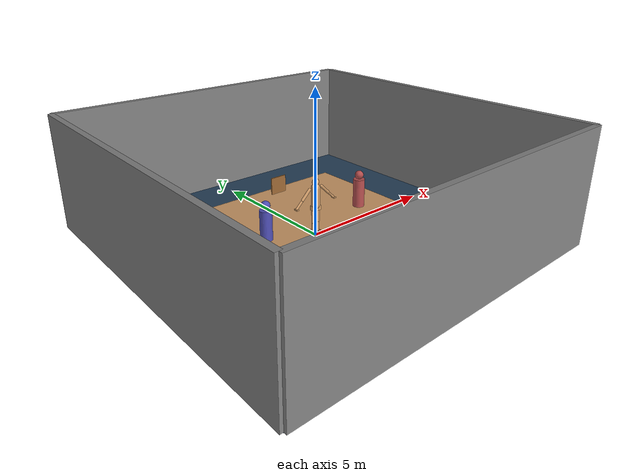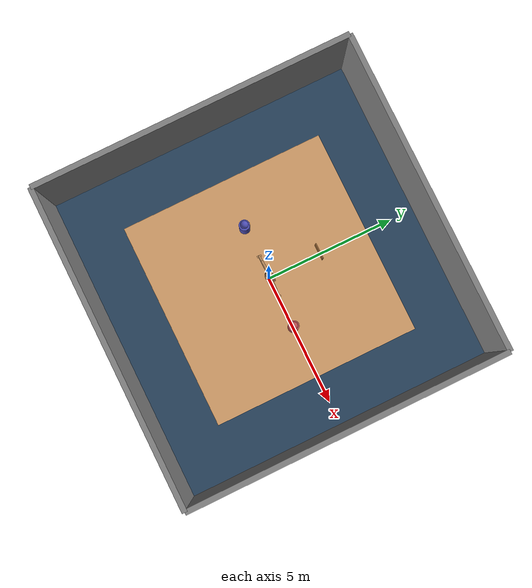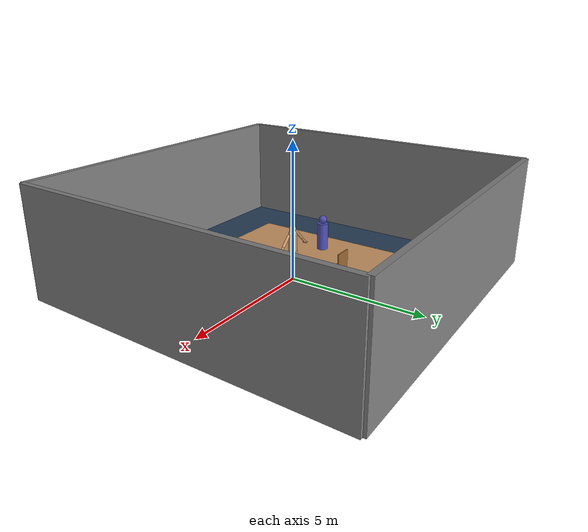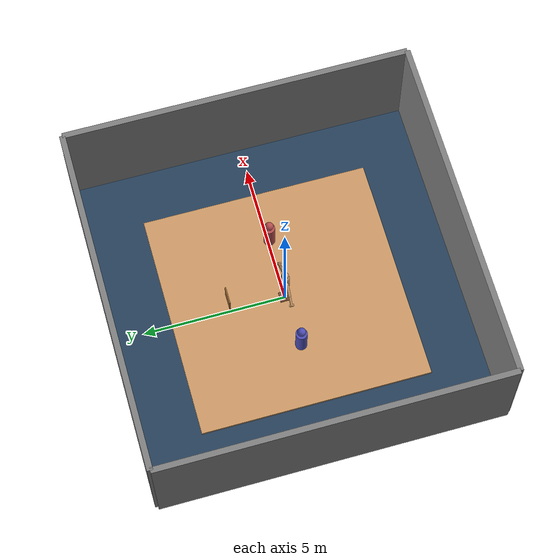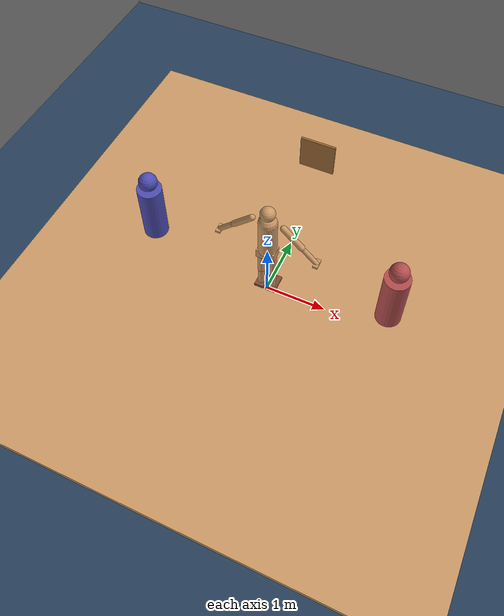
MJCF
<?xml version="1.0"?>
<mujoco model="humanoid_martial_arts">
    <compiler angle="degree" inertiafromgeom="true"/>
    <default>
        <joint armature="0.01" damping="0.5" limited="true"/>
        <geom contype="1" conaffinity="1" condim="3" friction="0.9 0.05 0.05" margin="0.01"/>
        <motor ctrlrange="-1 1" ctrllimited="true"/>
    </default>

    <option timestep="0.01667" gravity="0 0 -9.81" iterations="50" tolerance="1e-10" solver="Newton" jacobian="dense" cone="pyramidal"/>

    <visual>
        <quality shadowsize="2048"/>
        <headlight ambient="0.3 0.3 0.3" diffuse="0.5 0.5 0.5" specular="0.1 0.1 0.1"/>
    </visual>

    <size njmax="1000" nconmax="500" nstack="600000"/>

    <asset>
        <texture name="grid" type="2d" builtin="checker" rgb1="0.1 0.2 0.3" rgb2="0.2 0.3 0.4" width="512" height="512"/>
        <texture name="mat" type="2d" builtin="flat" rgb1="0.8 0.6 0.4" width="512" height="512"/>
        <material name="grid" texture="grid" texrepeat="10 10" specular="0.3" shininess="0.3" reflectance="0.1"/>
        <material name="mat" texture="mat" texrepeat="5 5" specular="0.3" shininess="0.3" reflectance="0.2"/>
    </asset>

    <worldbody>
        <!-- Dojo floor -->
        <geom name="floor" type="plane" size="6 6 0.1" material="grid" contype="1" conaffinity="1"/>
        <geom name="training_mat" type="box" pos="0 0 0.05" size="4 4 0.05" material="mat" contype="1" conaffinity="1"/>

        <!-- Walls for spatial reference -->
        <geom name="wall_north" type="box" pos="0 6 2" size="6 0.1 2" rgba="0.5 0.5 0.5 1" contype="1" conaffinity="1"/>
        <geom name="wall_south" type="box" pos="0 -6 2" size="6 0.1 2" rgba="0.5 0.5 0.5 1" contype="1" conaffinity="1"/>
        <geom name="wall_east" type="box" pos="6 0 2" size="0.1 6 2" rgba="0.5 0.5 0.5 1" contype="1" conaffinity="1"/>
        <geom name="wall_west" type="box" pos="-6 0 2" size="0.1 6 2" rgba="0.5 0.5 0.5 1" contype="1" conaffinity="1"/>

        <!-- Training dummies -->
        <body name="dummy1" pos="2 0 0">
            <joint name="dummy1_base" type="free"/>
            <geom name="dummy1_torso" type="cylinder" size="0.2 0.5" pos="0 0 1" rgba="0.7 0.3 0.3 1" mass="20"/>
            <geom name="dummy1_head" type="sphere" size="0.15" pos="0 0 1.65" rgba="0.7 0.3 0.3 1" mass="5"/>
        </body>

        <body name="dummy2" pos="-2 0 0">
            <joint name="dummy2_base" type="free"/>
            <geom name="dummy2_torso" type="cylinder" size="0.2 0.5" pos="0 0 1" rgba="0.3 0.3 0.7 1" mass="20"/>
            <geom name="dummy2_head" type="sphere" size="0.15" pos="0 0 1.65" rgba="0.3 0.3 0.7 1" mass="5"/>
        </body>

        <!-- Breaking boards for technique testing -->
        <body name="board1" pos="0 2 1.2">
            <joint name="board1_joint" type="hinge" axis="1 0 0" range="-45 45" damping="0.1"/>
            <geom name="board1_plank" type="box" size="0.3 0.02 0.3" rgba="0.6 0.4 0.2 1" mass="0.5"/>
        </body>

        <!-- Humanoid martial artist -->
        <body name="torso" pos="0 0 1.4">
            <joint name="torso_joint" type="free"/>
            <geom name="torso_geom" type="capsule" size="0.15 0.3" rgba="0.8 0.6 0.4 1" mass="10"/>

            <!-- Head -->
            <body name="head" pos="0 0 0.5">
                <joint name="neck_pitch" type="hinge" axis="0 1 0" range="-45 45"/>
                <joint name="neck_yaw" type="hinge" axis="0 0 1" range="-90 90"/>
                <geom name="head_geom" type="sphere" size="0.12" rgba="0.8 0.6 0.4 1" mass="3"/>
            </body>

            <!-- Right arm -->
            <body name="right_shoulder" pos="0.25 0 0.3">
                <joint name="right_shoulder_pitch" type="hinge" axis="0 1 0" range="-180 90"/>
                <joint name="right_shoulder_roll" type="hinge" axis="1 0 0" range="-90 180"/>
                <joint name="right_shoulder_yaw" type="hinge" axis="0 0 1" range="-90 90"/>
                <geom name="right_upper_arm" type="capsule" fromto="0 0 0 0.3 0 -0.3" size="0.05" rgba="0.8 0.6 0.4 1" mass="2"/>

                <body name="right_elbow" pos="0.3 0 -0.3">
                    <joint name="right_elbow_pitch" type="hinge" axis="0 1 0" range="0 150"/>
                    <geom name="right_forearm" type="capsule" fromto="0 0 0 0.25 0 -0.25" size="0.04" rgba="0.8 0.6 0.4 1" mass="1.5"/>

                    <body name="right_hand" pos="0.25 0 -0.25">
                        <joint name="right_wrist_pitch" type="hinge" axis="0 1 0" range="-90 90"/>
                        <joint name="right_wrist_roll" type="hinge" axis="1 0 0" range="-45 45"/>
                        <geom name="right_hand_geom" type="box" size="0.04 0.08 0.02" rgba="0.8 0.6 0.4 1" mass="0.5"/>
                        <site name="right_hand" pos="0 0 0" size="0.01"/>
                    </body>
                </body>
            </body>

            <!-- Left arm (mirror of right) -->
            <body name="left_shoulder" pos="-0.25 0 0.3">
                <joint name="left_shoulder_pitch" type="hinge" axis="0 1 0" range="-180 90"/>
                <joint name="left_shoulder_roll" type="hinge" axis="1 0 0" range="-180 90"/>
                <joint name="left_shoulder_yaw" type="hinge" axis="0 0 1" range="-90 90"/>
                <geom name="left_upper_arm" type="capsule" fromto="0 0 0 -0.3 0 -0.3" size="0.05" rgba="0.8 0.6 0.4 1" mass="2"/>

                <body name="left_elbow" pos="-0.3 0 -0.3">
                    <joint name="left_elbow_pitch" type="hinge" axis="0 1 0" range="0 150"/>
                    <geom name="left_forearm" type="capsule" fromto="0 0 0 -0.25 0 -0.25" size="0.04" rgba="0.8 0.6 0.4 1" mass="1.5"/>

                    <body name="left_hand" pos="-0.25 0 -0.25">
                        <joint name="left_wrist_pitch" type="hinge" axis="0 1 0" range="-90 90"/>
                        <joint name="left_wrist_roll" type="hinge" axis="1 0 0" range="-45 45"/>
                        <geom name="left_hand_geom" type="box" size="0.04 0.08 0.02" rgba="0.8 0.6 0.4 1" mass="0.5"/>
                        <site name="left_hand" pos="0 0 0" size="0.01"/>
                    </body>
                </body>
            </body>

            <!-- Pelvis and legs -->
            <body name="pelvis" pos="0 0 -0.4">
                <joint name="waist_pitch" type="hinge" axis="0 1 0" range="-45 45"/>
                <joint name="waist_yaw" type="hinge" axis="0 0 1" range="-90 90"/>
                <geom name="pelvis_geom" type="box" size="0.15 0.1 0.08" rgba="0.8 0.6 0.4 1" mass="5"/>

                <!-- Right leg -->
                <body name="right_hip" pos="0.1 0 -0.1">
                    <joint name="right_hip_pitch" type="hinge" axis="0 1 0" range="-120 45"/>
                    <joint name="right_hip_roll" type="hinge" axis="1 0 0" range="-45 45"/>
                    <joint name="right_hip_yaw" type="hinge" axis="0 0 1" range="-45 45"/>
                    <geom name="right_thigh" type="capsule" fromto="0 0 0 0 0 -0.4" size="0.06" rgba="0.8 0.6 0.4 1" mass="4"/>

                    <body name="right_knee" pos="0 0 -0.4">
                        <joint name="right_knee_pitch" type="hinge" axis="0 1 0" range="0 150"/>
                        <geom name="right_shin" type="capsule" fromto="0 0 0 0 0 -0.35" size="0.05" rgba="0.8 0.6 0.4 1" mass="3"/>

                        <body name="right_ankle" pos="0 0 -0.35">
                            <joint name="right_ankle_pitch" type="hinge" axis="0 1 0" range="-45 45"/>
                            <joint name="right_ankle_roll" type="hinge" axis="1 0 0" range="-30 30"/>
                            <geom name="right_foot" type="box" size="0.08 0.15 0.03" pos="0 0.05 -0.03" rgba="0.5 0.3 0.2 1" mass="1"/>
                            <site name="right_foot" pos="0 0 0" size="0.01"/>
                        </body>
                    </body>
                </body>

                <!-- Left leg (mirror of right) -->
                <body name="left_hip" pos="-0.1 0 -0.1">
                    <joint name="left_hip_pitch" type="hinge" axis="0 1 0" range="-120 45"/>
                    <joint name="left_hip_roll" type="hinge" axis="1 0 0" range="-45 45"/>
                    <joint name="left_hip_yaw" type="hinge" axis="0 0 1" range="-45 45"/>
                    <geom name="left_thigh" type="capsule" fromto="0 0 0 0 0 -0.4" size="0.06" rgba="0.8 0.6 0.4 1" mass="4"/>

                    <body name="left_knee" pos="0 0 -0.4">
                        <joint name="left_knee_pitch" type="hinge" axis="0 1 0" range="0 150"/>
                        <geom name="left_shin" type="capsule" fromto="0 0 0 0 0 -0.35" size="0.05" rgba="0.8 0.6 0.4 1" mass="3"/>

                        <body name="left_ankle" pos="0 0 -0.35">
                            <joint name="left_ankle_pitch" type="hinge" axis="0 1 0" range="-45 45"/>
                            <joint name="left_ankle_roll" type="hinge" axis="1 0 0" range="-30 30"/>
                            <geom name="left_foot" type="box" size="0.08 0.15 0.03" pos="0 0.05 -0.03" rgba="0.5 0.3 0.2 1" mass="1"/>
                            <site name="left_foot" pos="0 0 0" size="0.01"/>
                        </body>
                    </body>
                </body>
            </body>
        </body>

        <!-- Camera for different viewing angles -->
        <camera name="side_view" pos="5 0 2" xyaxes="0 -1 0 0 0 1" fovy="60"/>
        <camera name="front_view" pos="0 -5 2" xyaxes="1 0 0 0 0 1" fovy="60"/>
        <camera name="top_view" pos="0 0 8" xyaxes="1 0 0 0 1 0" fovy="60"/>
    </worldbody>

    <actuator>
        <!-- Head actuators -->
        <motor name="neck_pitch_motor" joint="neck_pitch" ctrlrange="-50 50"/>
        <motor name="neck_yaw_motor" joint="neck_yaw" ctrlrange="-50 50"/>

        <!-- Right arm actuators -->
        <motor name="right_shoulder_pitch_motor" joint="right_shoulder_pitch" ctrlrange="-100 100"/>
        <motor name="right_shoulder_roll_motor" joint="right_shoulder_roll" ctrlrange="-100 100"/>
        <motor name="right_shoulder_yaw_motor" joint="right_shoulder_yaw" ctrlrange="-100 100"/>
        <motor name="right_elbow_motor" joint="right_elbow_pitch" ctrlrange="-80 80"/>
        <motor name="right_wrist_pitch_motor" joint="right_wrist_pitch" ctrlrange="-40 40"/>
        <motor name="right_wrist_roll_motor" joint="right_wrist_roll" ctrlrange="-40 40"/>

        <!-- Left arm actuators -->
        <motor name="left_shoulder_pitch_motor" joint="left_shoulder_pitch" ctrlrange="-100 100"/>
        <motor name="left_shoulder_roll_motor" joint="left_shoulder_roll" ctrlrange="-100 100"/>
        <motor name="left_shoulder_yaw_motor" joint="left_shoulder_yaw" ctrlrange="-100 100"/>
        <motor name="left_elbow_motor" joint="left_elbow_pitch" ctrlrange="-80 80"/>
        <motor name="left_wrist_pitch_motor" joint="left_wrist_pitch" ctrlrange="-40 40"/>
        <motor name="left_wrist_roll_motor" joint="left_wrist_roll" ctrlrange="-40 40"/>

        <!-- Waist actuators -->
        <motor name="waist_pitch_motor" joint="waist_pitch" ctrlrange="-50 50"/>
        <motor name="waist_yaw_motor" joint="waist_yaw" ctrlrange="-50 50"/>

        <!-- Right leg actuators -->
        <motor name="right_hip_pitch_motor" joint="right_hip_pitch" ctrlrange="-150 150"/>
        <motor name="right_hip_roll_motor" joint="right_hip_roll" ctrlrange="-100 100"/>
        <motor name="right_hip_yaw_motor" joint="right_hip_yaw" ctrlrange="-100 100"/>
        <motor name="right_knee_motor" joint="right_knee_pitch" ctrlrange="-120 120"/>
        <motor name="right_ankle_pitch_motor" joint="right_ankle_pitch" ctrlrange="-60 60"/>
        <motor name="right_ankle_roll_motor" joint="right_ankle_roll" ctrlrange="-60 60"/>

        <!-- Left leg actuators -->
        <motor name="left_hip_pitch_motor" joint="left_hip_pitch" ctrlrange="-150 150"/>
        <motor name="left_hip_roll_motor" joint="left_hip_roll" ctrlrange="-100 100"/>
        <motor name="left_hip_yaw_motor" joint="left_hip_yaw" ctrlrange="-100 100"/>
        <motor name="left_knee_motor" joint="left_knee_pitch" ctrlrange="-120 120"/>
        <motor name="left_ankle_pitch_motor" joint="left_ankle_pitch" ctrlrange="-60 60"/>
        <motor name="left_ankle_roll_motor" joint="left_ankle_roll" ctrlrange="-60 60"/>
    </actuator>

    <sensor>
        <!-- Force sensors -->
        <force name="right_hand_force" site="right_hand"/>
        <force name="left_hand_force" site="left_hand"/>
        <force name="right_foot_force" site="right_foot"/>
        <force name="left_foot_force" site="left_foot"/>

        <!-- Position sensors -->
        <framepos name="torso_pos" objtype="body" objname="torso"/>
        <framequat name="torso_quat" objtype="body" objname="torso"/>

        <!-- Velocity sensors -->
        <framelinvel name="torso_linvel" objtype="body" objname="torso"/>
        <frameangvel name="torso_angvel" objtype="body" objname="torso"/>

        <!-- Joint sensors -->
        <jointpos name="neck_pos" joint="neck_pitch"/>
        <jointvel name="neck_vel" joint="neck_pitch"/>
    </sensor>
</mujoco>
